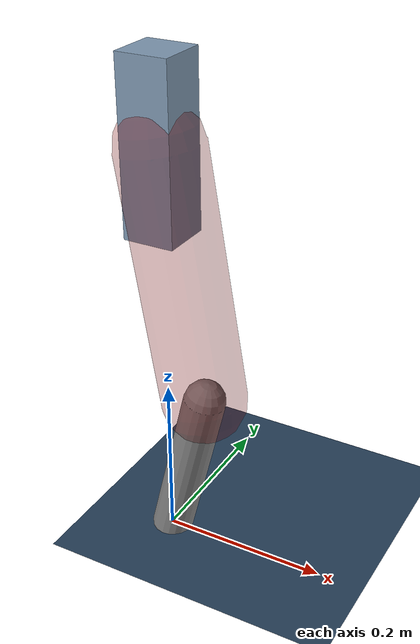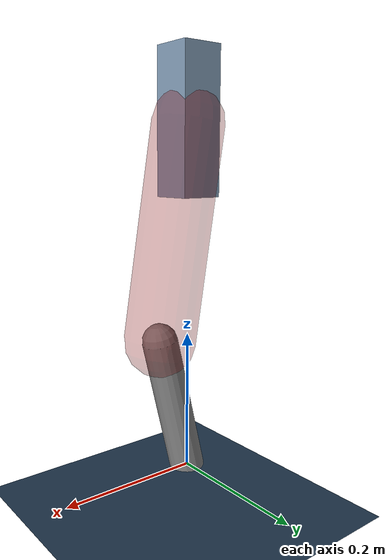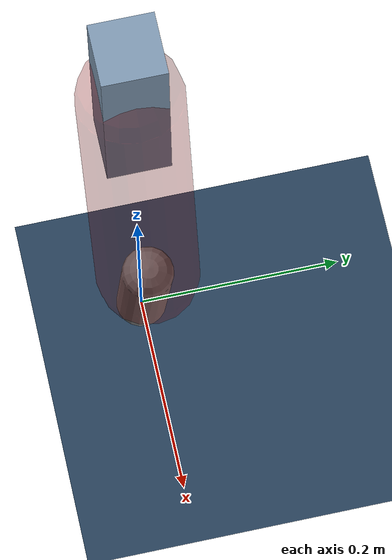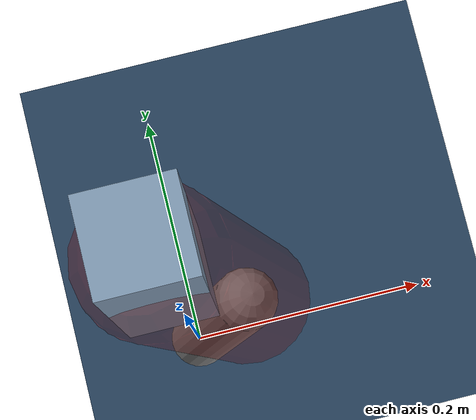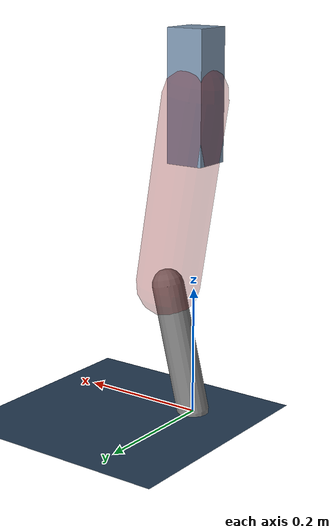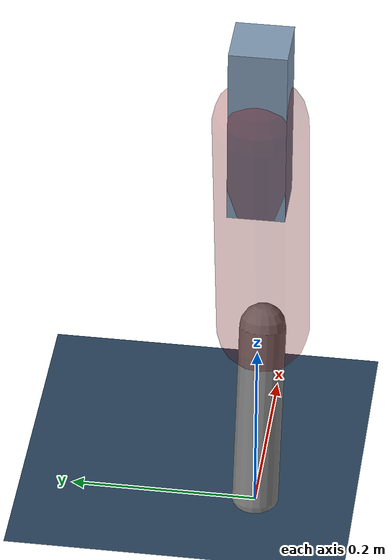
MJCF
<mujoco model="Hopper2D">
	<compiler inertiafromgeom="true" angle="radian" />
	<option timestep="0.001" integrator="implicit" cone="elliptic" solver="Newton" tolerance="1e-10" />

	<default>
		<geom contype="1" conaffinity="1" condim="3" friction="2 0.005 0.0001" solref="0.005 1" />
		<joint limited="true" damping="0.1" />
	</default>

	<asset>
		<texture name="skybox" type="skybox" builtin="gradient" rgb1=".4 .6 .8" rgb2="0 0 0" width="800" height="800" />
		<texture name="grid" type="2d" builtin="checker" rgb1=".1 .2 .3" rgb2=".2 .3 .4" width="300" height="300" mark="edge" markrgb=".2 .3 .4" />
		<material name="ground" texture="grid" texrepeat="1 1" texuniform="true" reflectance="0.1" />
		<material name="leg" rgba="0.5 0.6 0.7 1" />
	</asset>

	<worldbody>

		<geom name="floor" type="plane" size="5 5 0.25" material="ground" />

		<light directional="false" diffuse="0.8 0.8 0.8" specular="0.3 0.3 0.3" pos="0 0 2" dir="0 0 -1" />
		<light mode="targetbodycom" target="base" directional="false" diffuse="0.8 0.8 0.8" specular="0.3 0.3 0.3" pos="0 0 2" dir="0 0 -1" />

		<camera name="fixed" pos="0 -2 1" xyaxes="1 0 0 0 0 1" />
		<camera name="tracking" mode="trackcom" pos="0 -3 1" />

		<body name="root" pos="0 0 0.49561684323146027">
			<joint name="slide_x" type="slide" axis="1 0 0" range="-100 100" />
			<joint name="slide_z" type="slide" axis="0 0 1" range="0 10" />

			<body name="base" pos="0 0 0">
				<geom name="torso" type="box" size="0.03 0.03 0.1" mass="2.1630000000000003" material="leg" />

				<body name="link1" pos="0 0 0" euler="0 1.4073493622433526 0">
					<joint type="hinge" axis="0 -1 0" pos="0 0 0" name="hinge1" limited="true" range="-3.14 3.14" stiffness="0" damping="0.1" />
					<geom name="thigh" type="capsule" fromto="0 0 0 0.3014773467122283 0 0" size="0.05" rgba="0.5 0 0 0.3" mass="0.9926888361230164" />

					<body name="link2" pos="0.3014773467122283 0 0" euler="0 0.40613059185937567 0">
						<joint type="hinge" axis="0 -1 0" pos="0 0 0" name="hinge2" limited="true" range="-3.14 3.14" stiffness="0" damping="0.1" />
						<geom name="shank" type="capsule" fromto="0 0 0 0.20413949651923194 0 0" size="0.025" mass="0.40441159721538555" />

					</body>
				</body>
			</body>
		</body>
	</worldbody>

	<actuator>
		<motor name="torque1" joint="hinge1" ctrlrange="-61.59279836077156 61.59279836077156" ctrllimited="true" gear="1" />
		<motor name="torque2" joint="hinge2" ctrlrange="-83.4459622155456 83.4459622155456" ctrllimited="true" gear="1" />
	</actuator>
</mujoco>
